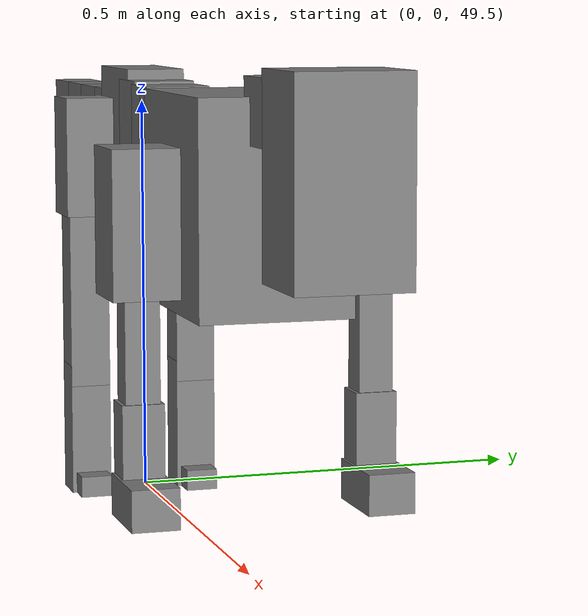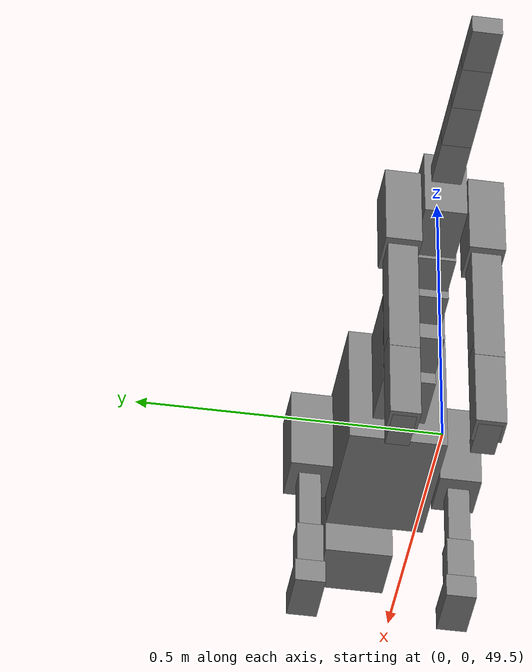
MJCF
<mujoco model="dog">

    <default>
        <joint armature="0.02" stiffness="1" damping="0.2" limited="true"/>
        <geom condim="3" friction="1 0.05 0.05" margin="0.01"/>
        <motor ctrllimited="true" ctrlrange="-1.0 1.0" forcelimited="true" gear="50"/>
    </default>

    <compiler inertiafromgeom="true" angle="radian"/>

    <option timestep="0.016" iterations="50" tolerance="1e-10" solver="Newton" jacobian="dense" cone="pyramidal"/>

    <size nconmax="20000" njmax="60000" nstack="5000000"/>
    <visual>
        <map force="0.1" zfar="30"/>
        <rgba haze="0.15 0.25 0.35 1"/>
        <quality shadowsize="2048"/>
        <global offwidth="800" offheight="800"/>
    </visual>

    <asset>
        <texture type="skybox" builtin="gradient" rgb1="0.3 0.5 0.7" rgb2="0 0 0" width="512" height="512"/>
        <texture name="texplane" type="2d" builtin="checker" rgb1=".2 .3 .4" rgb2=".1 0.15 0.2" width="512" height="512"
                 mark="cross" markrgb=".8 .8 .8"/>
        <texture name="texgeom" type="cube" builtin="flat" mark="cross" width="127" height="1278" rgb1="0.8 0.6 0.4"
                 rgb2="0.8 0.6 0.4" markrgb="1 1 1" random="0.01"/>

        <material name="matplane" reflectance="0.3" texture="texplane" texrepeat="1 1" texuniform="true"/>
        <material name="matgeom" texture="texgeom" texuniform="true" rgba="0.8 0.6 .4 1"/>
    </asset>

    <worldbody>
        <geom name="floor" pos="0 0 0" size="0 0 .25" type="plane" material="matplane" condim="3"/>

        <light directional="false" diffuse=".2 .2 .2" specular="0 0 0" pos="0 0 5" dir="0 0 -1" castshadow="false"/>
        <light mode="targetbodycom" target="torso" directional="false" diffuse=".8 .8 .8" specular="0.3 0.3 0.3"
               pos="0 0 4.0" dir="0 0 -1"/>

        <body name="root" pos="0 0 50">
            <freejoint name="root_1"/>
            <geom type="box" pos="0 0 -0.02" size="0.0774  0.0358  0.063" density="2030"/>

            <body name="spine1" pos="0.054 0 0">
                <joint name="spine1_y" axis="0 1 0" range="0 0.7" limited="true"/>
                <geom type="box" pos="0.02375 0 -0.03" size="0.04375  0.0375  0.05985" density="2030"/>

                <body name="spine2" pos="0.0612 0 0">
                    <joint name="spine2_y" axis="0 1 0" range="-0.15 0.15" limited="true"/>
                    <geom type="box" pos="0.03555  0  -0.04" size="0.04055  0.039  0.06615" density="2030"/>

                    <body name="spine3" pos="0.0730 0 0">
                        <joint name="spine3_y" axis="0 1 0" range="-0.15 0.15" limited="true"/>
                        <geom type="box" pos="0.03555  0  -0.057" size="0.04555  0.0445  0.081" density="2030"/>

                        <body name="spine4" pos="0.0780 0 0">
                            <joint name="spine4_y" axis="0 1 0" range="-0.15 0.15" limited="true"/>
                            <geom type="box" pos="0.05265  0  -0.07" size="0.05265  0.045  0.09135" density="2030"/>

                            <body name="torso" pos="0.1082 0 0">
                                <joint name="torso_y" axis="0 1 0" range="-0.15 0.15" limited="true"/>
                                <geom type="box" pos="0.11925  0  -0.085" size="0.11925  0.085  0.11745"
                                      density="2030"/>

                                <body name="neck1" pos="0.2160  0   0.0180">
                                    <joint name="neck1_y" axis="0 1 0" range="-1.2  -1" limited="true"/>
                                    <geom type="box" pos="0.0423  0  0" size="0.0423  0.03  0.036" density="2325"/>

                                    <body name="neck2" pos="0.0853  0  0">
                                        <joint name="neck2_y" axis="0 1 0" range="0.1  0" limited="true"/>
                                        <geom type="box" pos="0.0423  0  0" size="0.0423  0.03  0.036" density="2325"/>

                                        <body name="head" pos="0.0853  0  0">
                                            <joint name="head_y" axis="0 1 0" range="-0.3  -0.2" limited="true"/>
                                            <geom type="box" pos="0.0531  0  -0.055" size="0.0531  0.06  0.1044"
                                                  density="4030"/>

                                        </body>
                                    </body>
                                </body>

                                <body name="front_shoulder" pos="0.156  0   -0.0480">
                                    <joint name="front_shoulder_y" axis="0 1 0" range="-1 1.5" limited="true"/>
                                    <geom type="box" pos="0 0.13 -0.0530" size="0.0427  0.0365  0.0796" density="1158"/>
                                    <geom type="box" pos="0 -0.13 -0.0530" size="0.0427  0.0365  0.0796"
                                          density="1158"/>

                                    <body name="front_elbow" pos="0  0  -0.1059">
                                        <joint name="front_elbow_y" axis="0 1 0" range="-2 0" limited="true"/>
                                        <geom type="box" pos="0 0.13 -0.0765" size="0.0186  0.0190  0.0765"
                                              density="1081"/>
                                        <geom type="box" pos="0 -0.13 -0.0765" size="0.0186  0.0190  0.0765"
                                              density="1081"/>

                                        <body name="front_wrist" pos="0  0  -0.1529">
                                            <joint name="front_wrist_y" axis="0 1 0" range="-0.2 0" limited="true"/>
                                            <geom type="box" pos="0 0.13 -0.0408" size="0.0208  0.0231  0.0540"
                                                  density="1664"/>
                                            <geom type="box" pos="0 -0.13 -0.0408" size="0.0208  0.0231  0.0540"
                                                  density="1664"/>

                                            <body name="front_finger_end" pos="0  0  -0.0816">
                                                <joint name="front_finger_y" axis="0 1 0" range="-0.4 1"
                                                       limited="true"/>
                                                <geom type="box" pos="0.0261  0.13  -0.0076"
                                                      size="0.0478  0.0261  0.0226" density="1515"/>
                                                <geom type="box" pos="0.0261  -0.13  -0.0076"
                                                      size="0.0478  0.0261  0.0226" density="1515"/>

                                            </body>

                                        </body>
                                    </body>
                                </body>

                            </body>
                        </body>
                    </body>
                </body>
            </body>

            <body name="back_hip" pos="-0.03 0 -0.018">
                <joint name="back_hip_y" axis="0 1 0" range="-1.5 0.3" limited="true"/>
                <geom type="box" pos="0 0.07 -0.0531" size="0.0388  0.0304  0.0759" density="1154"/>
                <geom type="box" pos="0 -0.07 -0.0531" size="0.0388  0.0304  0.0759" density="1154"/>

                <body name="back_knee" pos="0  0  -0.1061">
                    <joint name="back_knee_y" axis="0 1 0" range="0 2.8" limited="true"/>
                    <geom type="box" pos="0 0.07 -0.1145" size="0.0255  0.0252  0.1301" density="1227"/>
                    <geom type="box" pos="0 -0.07 -0.1145" size="0.0255  0.0252  0.1301" density="1227"/>

                    <body name="back_ankle" pos="0  0  -0.2290">
                        <joint name="back_ankle_y" axis="0 1 0" range="-2.2 0" limited="true"/>
                        <geom type="box" pos="0 0.07 -0.0721" size="0.0253  0.0253  0.0833" density="1284"/>
                        <geom type="box" pos="0 -0.07 -0.0721" size="0.0253  0.0253  0.0833" density="1284"/>

                        <body name="back_toe_end" pos="0  0  -0.1442">
                            <joint name="back_toe_y" axis="0 1 0" range="-0.4 1" limited="true"/>
                            <geom type="box" pos="0.0199  0.07  0.0018" size="0.0364  0.0199  0.0132" density="1515"/>
                            <geom type="box" pos="0.0199  -0.07  0.0018" size="0.0364  0.0199  0.0132" density="1515"/>

                        </body>
                    </body>
                </body>
            </body>

            <body name="tail1" pos="-0.074 0 -0.006">
                <joint name="tail1_y" axis="0 1 0" range="-0.2 0.2" limited="true"/>
                <geom type="box" pos="-0.0536  0  0" size="0.045  0.025  0.0175" density="1587"/>

                <body name="tail2" pos="-0.09 0 0">
                    <joint name="tail2_y" axis="0 1 0" range="-0.2 0.2" limited="true"/>
                    <geom type="box" pos="-0.0536  0  0" size="0.045  0.025  0.0175" density="1587"/>

                    <body name="tail3" pos="-0.09 0 0">
                        <joint name="tail3_y" axis="0 1 0" range="-0.2 0.2" limited="true"/>
                        <geom type="box" pos="-0.0536  0  0" size="0.045  0.025  0.0175" density="1587"/>

                        <body name="tail4" pos="-0.09 0 0">
                            <joint name="tail4_y" axis="0 1 0" range="-0.2 0.2" limited="true"/>
                            <geom type="box" pos="-0.0536  0  0" size="0.045  0.025  0.0175" density="1587"/>

                        </body>
                    </body>
                </body>
            </body>
        </body>
    </worldbody>

    <actuator>
        <motor joint="spine1_y" forcerange="-150 150     "/>
        <motor joint="spine2_y" forcerange="-150 150     "/>
        <motor joint="spine3_y" forcerange="-150 150     "/>
        <motor joint="spine4_y" forcerange="-150 150     "/>
        <motor joint="torso_y" forcerange="-150 150     "/>
        <motor joint="neck1_y" forcerange="-100 100       "/>
        <motor joint="neck2_y" forcerange="-100 100       "/>
        <motor joint="head_y" forcerange="-150 150       "/>
        <motor joint="front_shoulder_y" forcerange="-188.35 155.06"/>
        <motor joint="front_elbow_y" forcerange="-135.39 102.92"/>
        <motor joint="front_wrist_y" forcerange="-114.68 70.13"/>
        <motor joint="front_finger_y" forcerange="-65.24 33.71"/>
        <motor joint="back_hip_y" forcerange="-248.74 357.21"/>
        <motor joint="back_knee_y" forcerange="-237.57 328.38"/>
        <motor joint="back_angle_y" forcerange="-216.65 88.87"/>
        <motor joint="back_toe_y" forcerange="-32.88 45.92"/>
        <motor joint="tail1_y" forcerange="-50 50     "/>
        <motor joint="tail2_y" forcerange="-50 50     "/>
        <motor joint="tail3_y" forcerange="-50 50     "/>
        <motor joint="tail4_y" forcerange="-50 50     "/>
    </actuator>
</mujoco>
